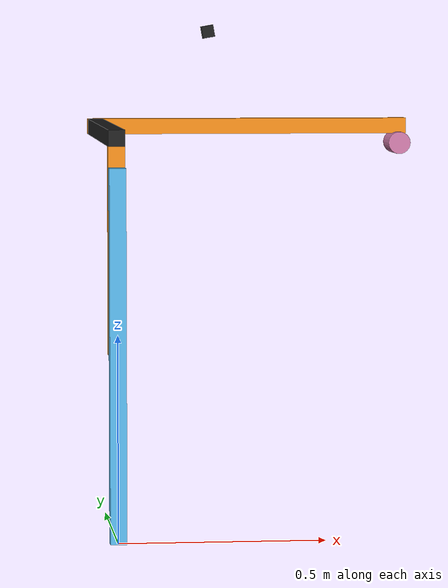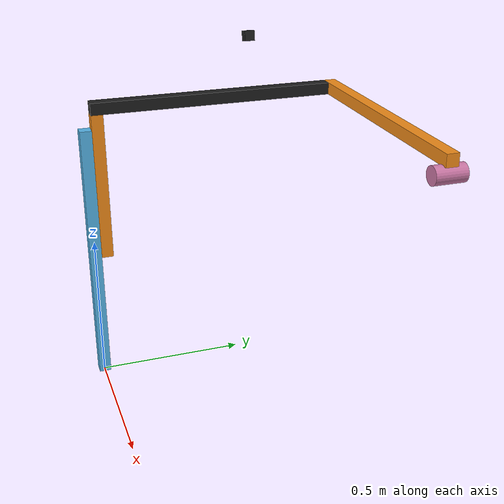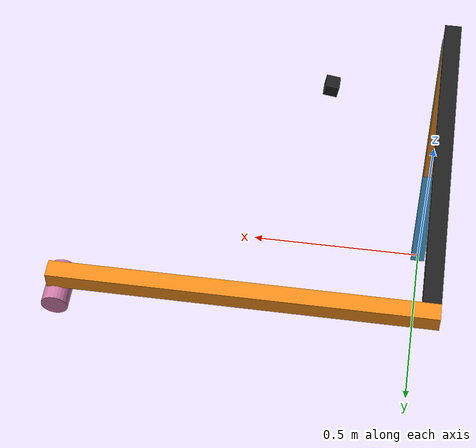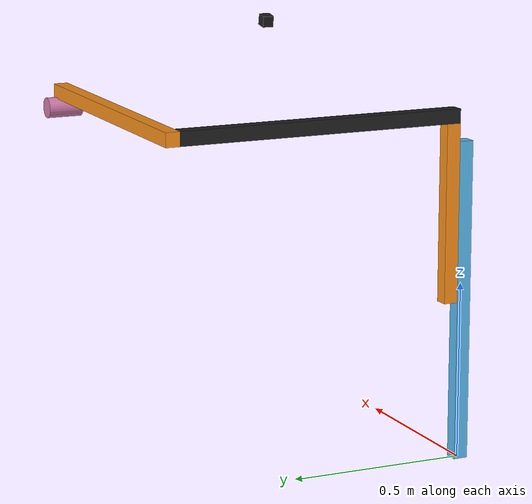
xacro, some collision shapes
<?xml version="1.0" ?>
<robot name="my_gripper" xmlns:xacro="http://www.ros.org/wiki/xacro">

  <!-- Include gazebo customization elements like colors and control plugins-->
  <xacro:include filename="$(find poke_description)/urdf/my_gripper.gazebo"/>
  <!-- Import materials-->
  <xacro:include filename="$(find poke_description)/urdf/materials.xacro"/>

  <link name="world"/>
  <joint name="fixed" type="fixed">
    <parent link="world"/>
    <child link="link0"/>
  </joint>
  <link name="link0">
    <visual>
      <origin rpy="0 0 0" xyz="0 0 0.45"/>
      <geometry>
        <box size="0.04 0.04 0.9"/>
      </geometry>
    </visual>
    <collision>
      <origin rpy="0 0 0" xyz="0 0 0.45"/>
      <geometry>
        <box size="0.04 0.04 0.9"/>
      </geometry>
    </collision>
    <inertial>
      <origin rpy="0 0 0" xyz="0 0 0.45"/>
      <mass value="0.1"/>
      <inertia ixx="0.002" ixy="0" ixz="0" iyy="0.002" iyz="0" izz="0.002"/>
    </inertial>
  </link>

  <joint name="joint1" type="prismatic">
    <origin xyz="0 0.04 0.45" rpy="0 0 0"/>
    <parent link="link0"/>
    <child link="link1"/>
    <axis xyz="0 0 1"/>
    <dynamics damping="0.7"/>
    <limit effort="300.0" lower="0" upper="0.4" velocity="2"/>
  </joint>

  <link name="link1">
    <visual>
      <origin rpy="0 0 0" xyz="0 0 0.25"/>
      <geometry>
        <box size="0.04 0.04 0.5"/>
      </geometry>
      <material name="orange"/>
    </visual>
    <collision>
      <origin rpy="0 0 0" xyz="0 0 0.25"/>
      <geometry>
        <box size="0.04 0.04 0.5"/>
      </geometry>
    </collision>
    <inertial>
      <origin rpy="0 0 0" xyz="0 0 0.25"/>
      <mass value="0.1"/>
      <inertia ixx="0.002" ixy="0" ixz="0" iyy="0.002" iyz="0" izz="0.002"/>
    </inertial>
  </link>

  <joint name="joint2" type="prismatic">
    <origin xyz="0 -0.02 0.52" rpy="${-pi/2} 0 0"/>
    <parent link="link1"/>
    <child link="link2"/>
    <axis xyz="0 0 -1"/>
    <dynamics damping="0.7"/>
    <!-- adding extra 0.05m to each limit, originally 0 to 0.80-->
    <limit effort="300.0" lower="-0.05" upper="0.85" velocity="2"/>
  </joint>

  <link name="link2">
    <visual>
      <origin rpy="0 0 0" xyz="0 0 0.41"/>
      <geometry>
        <box size="0.04 0.04 0.82"/>
      </geometry>
      <material name="black"/>
    </visual>
    <collision>
      <origin rpy="0 0 0" xyz="0 0 0.41"/>
      <geometry>
        <box size="0.04 0.04 0.82"/>
      </geometry>
    </collision>
    <inertial>
      <origin rpy="0 0 0" xyz="0 0 0.41"/>
      <mass value="0.15"/>
      <inertia ixx="0.002" ixy="0" ixz="0" iyy="0.002" iyz="0" izz="0.002"/>
    </inertial>
  </link>

  <joint name="joint3" type="prismatic">
    <origin xyz="-0.02 0 0.84" rpy="0 ${pi/2} 0"/>
    <parent link="link2"/>
    <child link="link3"/>
    <axis xyz="0 0 -1"/>
    <dynamics damping="0.7"/>
    <!-- adding extra 0.05m to each limit, originally 0 to 0.82-->
    <limit effort="300.0" lower="-0.05" upper="0.87" velocity="2"/>
  </joint>

  <link name="link3">
    <visual>
      <origin rpy="0 0 0" xyz="0 0 0.42"/>
      <geometry>
        <box size="0.04 0.04 0.84"/>
      </geometry>
      <material name="orange"/>
    </visual>
    <collision>
      <origin rpy="0 0 0" xyz="0 0 0.42"/>
      <geometry>
        <box size="0.04 0.04 0.84"/>
      </geometry>
    </collision>
    <inertial>
      <origin rpy="0 0 0" xyz="0 0 0.42"/>
      <mass value="0.16"/>
      <inertia ixx="0.002" ixy="0" ixz="0" iyy="0.002" iyz="0" izz="0.002"/>
    </inertial>
  </link>

  <joint name="my_camera_joint" type="fixed">
    <origin xyz="0.26 0.47 1.22" rpy="0 ${4*pi/9} 0"/>
    <parent link="link0"/>
    <child link="my_camera_link"/>
    <axis xyz="1 0 0 "/>
  </joint>
  <!-- Camera -->
  <link name="my_camera_link">
    <visual>
      <origin xyz="0 0 0" rpy="0 0 0"/>
      <geometry>
        <box size="0.03 0.03 0.03"/>
      </geometry>
      <material name="black"/>
    </visual>
    <inertial>
      <mass value="1e-2" />
      <origin xyz="0 0 0" rpy="0 0 0"/>
      <inertia ixx="1e-3" ixy="0" ixz="0" iyy="1e-3" iyz="0" izz="1e-3" />
    </inertial>
  </link>

  <transmission name="trans1">
    <type>transmission_interface/SimpleTransmission</type>
    <joint name="joint1">
      <hardwareInterface>EffortJointInterface</hardwareInterface>
    </joint>
    <actuator name="motor1">
      <hardwareInterface>EffortJointInterface</hardwareInterface>
      <mechanicalReduction>1</mechanicalReduction>
    </actuator>
  </transmission>
  <transmission name="trans2">
    <type>transmission_interface/SimpleTransmission</type>
    <joint name="joint2">
      <hardwareInterface>EffortJointInterface</hardwareInterface>
    </joint>
    <actuator name="motor2">
      <hardwareInterface>EffortJointInterface</hardwareInterface>
      <mechanicalReduction>1</mechanicalReduction>
    </actuator>
  </transmission>
  <transmission name="trans3">
    <type>transmission_interface/SimpleTransmission</type>
    <joint name="joint3">
      <hardwareInterface>EffortJointInterface</hardwareInterface>
    </joint>
    <actuator name="motor3">
      <hardwareInterface>EffortJointInterface</hardwareInterface>
      <mechanicalReduction>1</mechanicalReduction>
    </actuator>
  </transmission>

  <!-- Left End Effector -->
  <xacro:include filename="$(find poke_description)/urdf/my_electric_gripper.xacro" />
  <xacro:my_electric_gripper side="left"
                                  l_finger="extended_narrow"
                                  l_finger_slot="1"
                                  l_finger_tip="basic_soft_tip"
                                  l_finger_grasp="inner"
                                  r_finger="extended_narrow"
                                  r_finger_slot="1"
                                  r_finger_tip="basic_soft_tip"
                                  r_finger_grasp="inner"/>
</robot>

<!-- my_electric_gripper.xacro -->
<robot xmlns:xacro="http://www.ros.org/wiki/xacro" name="my_electric_gripper">
  <xacro:macro name="my_electric_gripper" params="side r_finger r_finger_slot r_finger_tip r_finger_grasp l_finger l_finger_slot l_finger_tip l_finger_grasp">
    <xacro:property name="gripper_side" value="${side[0]}" scope="local"/>

    <!-- Base of end effector -->
    <link name="${side}_gripper_base">
      <visual>
        <origin rpy="${-pi/2} ${pi} 0" xyz="0 0 0"/>
        <geometry>
          <mesh filename="package://rethink_ee_description/meshes/electric_gripper/electric_gripper_base.DAE"/>
        </geometry>
      </visual>
      <collision>
        <origin rpy="${-pi/2} ${pi} 0" xyz="0.0 0.0 0"/>
        <geometry>
          <cylinder length="0.1" radius="0.029"/>
        </geometry>
        <material name="darkred">
          <color rgba=".5 .1 .1 1"/>
        </material>
      </collision>
      <inertial>
        <origin rpy="${-pi/2} ${pi} 0" xyz="0.0 0.0 0.0"/>
        <mass value="0.3"/>
        <inertia ixx="2e-03" ixy="0" ixz="0" iyy="3e-03" iyz="0" izz="2e-03"/>
      </inertial>
    </link>

    <!-- Left finger link -->
    <xacro:property name="finger_length" value="0.0" scope="global"/>
    <xacro:include filename="$(find rethink_ee_description)/urdf/electric_gripper/fingers/${l_finger}.xacro" />
    <xacro:finger_xacro gripper_side="${gripper_side}" finger_side="l" reflect="1" finger_tip="${l_finger_tip}" finger_grasp="${l_finger_grasp}"/>
    <xacro:property name="tip_finger_length" value="${finger_length}" scope="local"/>

    <!-- Right finger link -->
    <xacro:include filename="$(find rethink_ee_description)/urdf/electric_gripper/fingers/${r_finger}.xacro" />
    <xacro:finger_xacro gripper_side="${gripper_side}" finger_side="r" reflect="-1" finger_tip="${r_finger_tip}" finger_grasp="${r_finger_grasp}"/>
    <xacro:if value="${finger_length > tip_finger_length}">
        <xacro:property name="tip_finger_length" value="${finger_length}" scope="local"/>
    </xacro:if>

    <!-- Electric Gripper Base Joint -->
    <joint name="gripper_base_joint" type="revolute">
      <origin xyz="0 0.045 0.82" rpy="${-pi/2} ${-pi/2} 0"/>
      <axis xyz="0 0 1"/>
      <parent link="link3"/>
      <child link="${side}_gripper_base"/>
      <limit effort="200.0" lower="-3.14159" upper="3.14159" velocity="2"/>
      <dynamics damping="0.7"/>
    </joint>
    <!-- Electric Gripper Tip joint -->
    <joint name="${side}_endpoint" type="fixed">
      <origin rpy="0 0 0" xyz="0 0 ${tip_finger_length+0.02}"/>
      <parent link="${side}_gripper_base"/>
      <child link="${side}_gripper"/>
    </joint>
    <!-- Electric Gripper Tip link -->
    <link name="${side}_gripper">
      <inertial>
        <origin rpy="0 0 0" xyz="0 0 0"/>
        <mass value="0.0001"/>
        <inertia ixx="0" ixy="0" ixz="0" iyy="0" iyz="0" izz="0.0"/>
      </inertial>
    </link>

    <!-- Left finger -->
    <xacro:property name="l_finger_offset" value="${((l_finger_slot-1)*0.0095) -0.011}" scope="local"/>
    <joint name="${gripper_side}_gripper_l_finger_joint" type="fixed">
      <origin rpy="0 0 0" xyz="0.0 ${l_finger_offset} 0.02"/>
      <axis xyz="0 1 0"/>
      <parent link="${side}_gripper_base"/>
      <child link="${gripper_side}_gripper_l_finger"/>
      <limit effort="400.0" lower="0.0" upper="0.020833" velocity="5.0"/>
      <dynamics damping="0.7" friction="0.0"/>
    </joint>

    <!-- Right finger -->
    <xacro:property name="r_finger_offset" value="${((r_finger_slot-1)*-0.0095) +0.011}" scope="local"/>
    <joint name="${gripper_side}_gripper_r_finger_joint" type="fixed">
      <origin rpy="0 0 0" xyz="0.0 ${r_finger_offset} 0.02"/>
      <axis xyz="0 1 0"/>
      <parent link="${side}_gripper_base"/>
      <child link="${gripper_side}_gripper_r_finger"/>
      <limit effort="400.0" lower="-0.020833" upper="0.0" velocity="5.0"/>
      <dynamics damping="0.7" friction="0.0"/>
    </joint>

    <transmission name="gripper_base">
      <type>txransmission_interface/SimpleTransmission</type>
      <joint name="gripper_base_joint">
        <hardwareInterface>EffortJointInterface</hardwareInterface>
      </joint>
      <actuator name="gripper_base_motor">
        <hardwareInterface>EffortJointInterface</hardwareInterface>
        <mechanicalReduction>1</mechanicalReduction>
      </actuator>
    </transmission>

    <gazebo reference="${gripper_side}_gripper_r_finger_joint">
      <implicitSpringDamper>1</implicitSpringDamper>
    </gazebo>
    <gazebo reference="${gripper_side}_gripper_l_finger_joint">
      <implicitSpringDamper>1</implicitSpringDamper>
    </gazebo>
    <gazebo reference="gripper_base_joint">
      <implicitSpringDamper>1</implicitSpringDamper>
    </gazebo>

  </xacro:macro>
</robot>

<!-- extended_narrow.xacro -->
<robot xmlns:xacro="http://www.ros.org/wiki/xacro" name="extended_narrow">
  <xacro:macro name="finger_xacro" params="gripper_side finger_side reflect finger_tip finger_grasp">
  <xacro:property name="finger_length" value="0.1127" scope="global"/>
  <xacro:property name="finger_width" value="0.01725" scope="local"/>
    <link name="${gripper_side}_gripper_${finger_side}_finger">
      <xacro:property name="finger_box_height" value="0.01" scope="local"/>
      <xacro:property name="finger_box_width" value="0.0135" scope="local"/>
      <xacro:property name="finger_box_length" value="0.0615" scope="local"/>
      <collision>
        <origin rpy="0 0 ${-pi/2*(reflect+1)}" xyz="0 ${finger_width*reflect} ${finger_box_length}"/>
        <geometry>
          <box size="${finger_box_height} ${finger_box_width} ${finger_length}"/>
        </geometry>
      </collision>
      <xacro:property name="knuckle_box_height" value="0.01" scope="local"/>
      <xacro:property name="knuckle_box_width" value="0.017" scope="local"/>
      <xacro:property name="knuckle_box_length" value="${finger_width + 0.03275}" scope="local"/>
      <collision>
        <origin rpy="0 0 ${-pi/2*(reflect+1)}" xyz="${reflect*-0.005} ${-0.003*reflect} 0.0083"/>
        <geometry>
          <box size="${knuckle_box_height} ${knuckle_box_length} ${knuckle_box_width}"/>
        </geometry>
      </collision>
      <inertial>
        <origin rpy="0 0 ${-pi/2*(reflect+1)}" xyz="0 0 0"/>
        <mass value="0.02"/>
        <inertia ixx="0.01" ixy="0" ixz="0" iyy="0.01" iyz="0" izz="0.01"/>
      </inertial>
    </link>

    <gazebo reference="${gripper_side}_gripper_${finger_side}_finger">
      <!-- original value 1000-->
      <mu1>0.4</mu1>
      <mu2>0.4</mu2>
      <fdir1>0.0 0.0 1.0</fdir1>
      <kp>1e5</kp>
      <kd>1.0</kd>
    </gazebo>

    <xacro:property name="none" value="[none, false, null, empty]" scope="local"/>
    <xacro:if value="${finger_tip in none}">
      <xacro:property name="finger_tip" value="none" scope="local"/>
    </xacro:if>
    <xacro:include filename="$(find rethink_ee_description)/urdf/electric_gripper/fingers/${finger_tip}.xacro" />
    <xacro:finger_tip_xacro parent_link="${gripper_side}_gripper_${finger_side}_finger" reflect="${reflect}" grasp="${finger_grasp}">
      <origin rpy="0 0 0" xyz="0.0 ${reflect*finger_width} ${finger_length}"/>
    </xacro:finger_tip_xacro>

  </xacro:macro>
</robot>

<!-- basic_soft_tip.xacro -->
<robot xmlns:xacro="http://www.ros.org/wiki/xacro" name="basic_soft_tip">
  <xacro:macro name="finger_tip_xacro" params="parent_link reflect grasp *joint_origin">
    <xacro:property name="g_reflect" value="${reflect}" scope="local"/>
    <xacro:if value="${grasp == 'outer'}">
      <xacro:property name="g_reflect" value="${-reflect}" scope="local"/>
    </xacro:if>
    <link name="${parent_link}_tip">
      <collision>
        <origin rpy="0 0 ${pi*(g_reflect+1)/2}" xyz="0 ${-0.0045*g_reflect} -0.015"/>
        <geometry>
          <box size="0.016 0.007 0.037"/>
        </geometry>
      </collision>
      <inertial>
        <origin rpy="0 0 ${pi*(g_reflect+1)/2}" xyz="0 0 0"/>
        <mass value="0.01"/>
        <inertia ixx="0.01" ixy="0" ixz="0" iyy="0.01" iyz="0" izz="0.01"/>
      </inertial>
    </link>

    <joint name="${parent_link}_tip_joint" type="fixed">
      <xacro:insert_block name="joint_origin" />
      <parent link="${parent_link}"/>
      <child link="${parent_link}_tip"/>
    </joint>
  </xacro:macro>
</robot>
